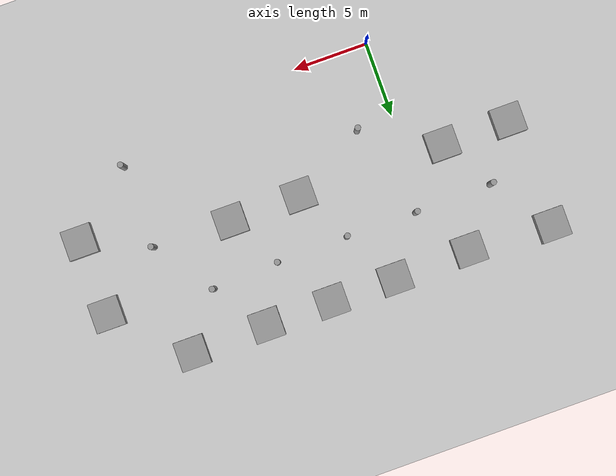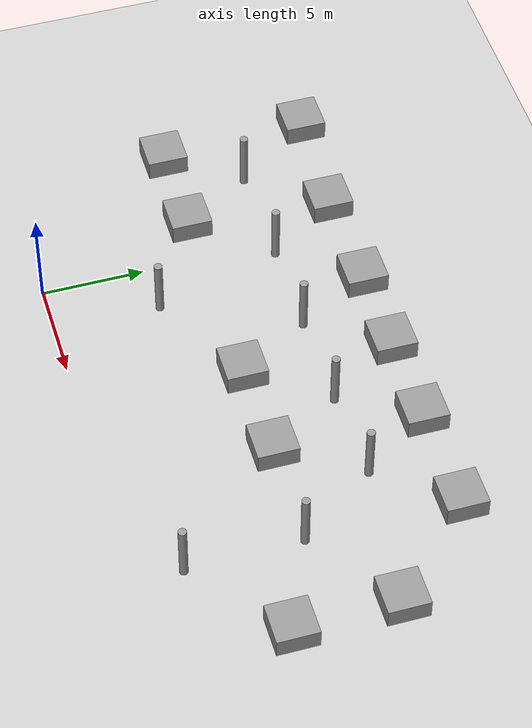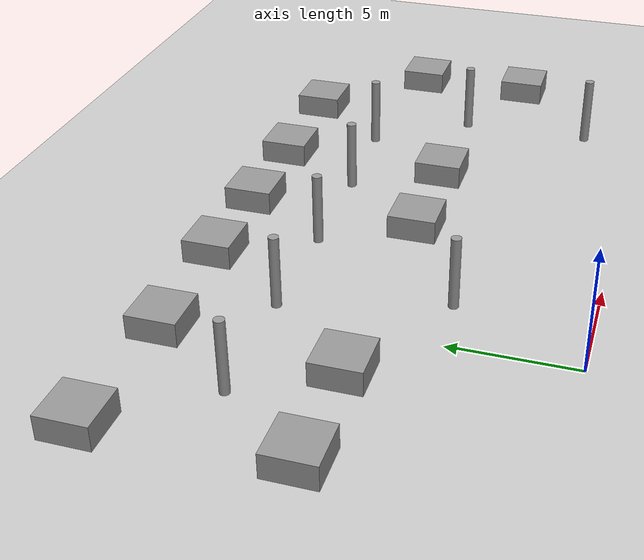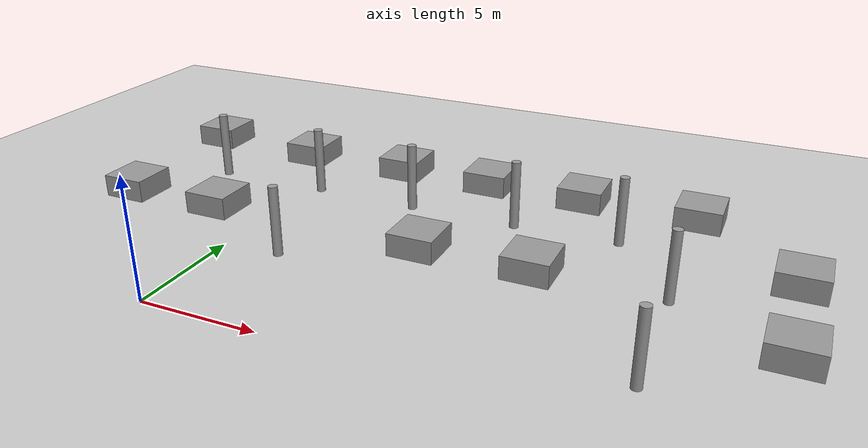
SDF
<sdf version="1.6">
 <world name="default">
  <model name="ground_plane">
   <static>1</static>
   <link name="link">
    <collision name="collision">
     <geometry><plane><normal>0 0 1</normal><size>100 100</size></plane></geometry>
     <surface><friction><ode><mu>100</mu><mu2>50</mu2></ode></friction></surface>
    </collision>
    <visual name="visual">
     <cast_shadows>0</cast_shadows>
     <geometry><plane><normal>0 0 1</normal><size>100 100</size></plane></geometry>
     <material>
      <script><uri>file://media/materials/scripts/gazebo.material</uri><name>Gazebo/Grey</name></script>
     </material>
    </visual>
   </link>
  </model>
  <model name="box3_clone_5">
   <link name="link_0">
    <inertial>
     <mass>200</mass>
     <inertia><ixx>83.3333</ixx><ixy>0</ixy><ixz>0</ixz><iyy>83.3333</iyy><iyz>0</iyz><izz>133.333</izz></inertia>
     <pose>0 0 1 0 -0 0</pose>
    </inertial>
    <visual name="visual">
     <geometry><box><size>2 2 1</size></box></geometry>
     <material>
      <lighting>1</lighting>
      <script><uri>file://media/materials/scripts/gazebo.material</uri><name>Gazebo/Grey</name></script>
      <shader type="pixel"><normal_map>__default__</normal_map></shader>
      <ambient>0.3 0.3 0.3 1</ambient>
      <diffuse>0.7 0.7 0.7 1</diffuse>
      <specular>0.01 0.01 0.01 1</specular>
      <emissive>0 0 0 1</emissive>
     </material>
    </visual>
    <collision name="collision">
     <geometry><box><size>2 2 1</size></box></geometry>
     <surface>
      <friction>
       <ode><mu>1</mu><mu2>1</mu2><fdir1>0 0 0</fdir1><slip1>0</slip1><slip2>0</slip2></ode>
       <torsional>
        <coefficient>1</coefficient>
        <patch_radius>0</patch_radius>
        <surface_radius>0</surface_radius>
        <use_patch_radius>1</use_patch_radius>
        <ode><slip>0</slip></ode>
       </torsional>
      </friction>
      <bounce><restitution_coefficient>0</restitution_coefficient><threshold>1e+06</threshold></bounce>
      <contact>
       <collide_without_contact>0</collide_without_contact>
       <collide_without_contact_bitmask>1</collide_without_contact_bitmask>
       <collide_bitmask>1</collide_bitmask>
       <ode>
        <soft_cfm>0</soft_cfm>
        <soft_erp>0.2</soft_erp>
        <kp>1e+13</kp>
        <kd>1</kd>
        <max_vel>0.01</max_vel>
        <min_depth>0</min_depth>
       </ode>
       <bullet>
        <split_impulse>1</split_impulse>
        <split_impulse_penetration_threshold>-0.01</split_impulse_penetration_threshold>
        <soft_cfm>0</soft_cfm>
        <soft_erp>0.2</soft_erp>
        <kp>1e+13</kp>
        <kd>1</kd>
       </bullet>
      </contact>
     </surface>
    </collision>
   </link>
   <static>0</static>
   <pose>-7.41157 15.2979 0.5 0 -0 0.000104</pose>
  </model>
  <model name="box3_clone_6">
   <link name="link_0">
    <inertial>
     <mass>200</mass>
     <inertia><ixx>83.3333</ixx><ixy>0</ixy><ixz>0</ixz><iyy>83.3333</iyy><iyz>0</iyz><izz>133.333</izz></inertia>
     <pose>0 0 1 0 -0 0</pose>
    </inertial>
    <visual name="visual">
     <geometry><box><size>2 2 1</size></box></geometry>
     <material>
      <lighting>1</lighting>
      <script><uri>file://media/materials/scripts/gazebo.material</uri><name>Gazebo/Grey</name></script>
      <shader type="pixel"><normal_map>__default__</normal_map></shader>
      <ambient>0.3 0.3 0.3 1</ambient>
      <diffuse>0.7 0.7 0.7 1</diffuse>
      <specular>0.01 0.01 0.01 1</specular>
      <emissive>0 0 0 1</emissive>
     </material>
    </visual>
    <collision name="collision">
     <geometry><box><size>2 2 1</size></box></geometry>
     <surface>
      <friction>
       <ode><mu>1</mu><mu2>1</mu2><fdir1>0 0 0</fdir1><slip1>0</slip1><slip2>0</slip2></ode>
       <torsional>
        <coefficient>1</coefficient>
        <patch_radius>0</patch_radius>
        <surface_radius>0</surface_radius>
        <use_patch_radius>1</use_patch_radius>
        <ode><slip>0</slip></ode>
       </torsional>
      </friction>
      <bounce><restitution_coefficient>0</restitution_coefficient><threshold>1e+06</threshold></bounce>
      <contact>
       <collide_without_contact>0</collide_without_contact>
       <collide_without_contact_bitmask>1</collide_without_contact_bitmask>
       <collide_bitmask>1</collide_bitmask>
       <ode>
        <soft_cfm>0</soft_cfm>
        <soft_erp>0.2</soft_erp>
        <kp>1e+13</kp>
        <kd>1</kd>
        <max_vel>0.01</max_vel>
        <min_depth>0</min_depth>
       </ode>
       <bullet>
        <split_impulse>1</split_impulse>
        <split_impulse_penetration_threshold>-0.01</split_impulse_penetration_threshold>
        <soft_cfm>0</soft_cfm>
        <soft_erp>0.2</soft_erp>
        <kp>1e+13</kp>
        <kd>1</kd>
       </bullet>
      </contact>
     </surface>
    </collision>
   </link>
   <static>0</static>
   <pose>-7.01543 7.91101 0.5 0 -0 0.000104</pose>
  </model>
  <model name="box3_clone_7">
   <link name="link_0">
    <inertial>
     <mass>200</mass>
     <inertia><ixx>83.3333</ixx><ixy>0</ixy><ixz>0</ixz><iyy>83.3333</iyy><iyz>0</iyz><izz>133.333</izz></inertia>
     <pose>0 0 1 0 -0 0</pose>
    </inertial>
    <visual name="visual">
     <geometry><box><size>2 2 1</size></box></geometry>
     <material>
      <lighting>1</lighting>
      <script><uri>file://media/materials/scripts/gazebo.material</uri><name>Gazebo/Grey</name></script>
      <shader type="pixel"><normal_map>__default__</normal_map></shader>
      <ambient>0.3 0.3 0.3 1</ambient>
      <diffuse>0.7 0.7 0.7 1</diffuse>
      <specular>0.01 0.01 0.01 1</specular>
      <emissive>0 0 0 1</emissive>
     </material>
    </visual>
    <collision name="collision">
     <geometry><box><size>2 2 1</size></box></geometry>
     <surface>
      <friction>
       <ode><mu>1</mu><mu2>1</mu2><fdir1>0 0 0</fdir1><slip1>0</slip1><slip2>0</slip2></ode>
       <torsional>
        <coefficient>1</coefficient>
        <patch_radius>0</patch_radius>
        <surface_radius>0</surface_radius>
        <use_patch_radius>1</use_patch_radius>
        <ode><slip>0</slip></ode>
       </torsional>
      </friction>
      <bounce><restitution_coefficient>0</restitution_coefficient><threshold>1e+06</threshold></bounce>
      <contact>
       <collide_without_contact>0</collide_without_contact>
       <collide_without_contact_bitmask>1</collide_without_contact_bitmask>
       <collide_bitmask>1</collide_bitmask>
       <ode>
        <soft_cfm>0</soft_cfm>
        <soft_erp>0.2</soft_erp>
        <kp>1e+13</kp>
        <kd>1</kd>
        <max_vel>0.01</max_vel>
        <min_depth>0</min_depth>
       </ode>
       <bullet>
        <split_impulse>1</split_impulse>
        <split_impulse_penetration_threshold>-0.01</split_impulse_penetration_threshold>
        <soft_cfm>0</soft_cfm>
        <soft_erp>0.2</soft_erp>
        <kp>1e+13</kp>
        <kd>1</kd>
       </bullet>
      </contact>
     </surface>
    </collision>
   </link>
   <static>0</static>
   <pose>-2.44061 7.92404 0.5 0 -0 0.000104</pose>
  </model>
  <model name="box3_clone_8">
   <link name="link_0">
    <inertial>
     <mass>200</mass>
     <inertia><ixx>83.3333</ixx><ixy>0</ixy><ixz>0</ixz><iyy>83.3333</iyy><iyz>0</iyz><izz>133.333</izz></inertia>
     <pose>0 0 1 0 -0 0</pose>
    </inertial>
    <visual name="visual">
     <geometry><box><size>2 2 1</size></box></geometry>
     <material>
      <lighting>1</lighting>
      <script><uri>file://media/materials/scripts/gazebo.material</uri><name>Gazebo/Grey</name></script>
      <shader type="pixel"><normal_map>__default__</normal_map></shader>
      <ambient>0.3 0.3 0.3 1</ambient>
      <diffuse>0.7 0.7 0.7 1</diffuse>
      <specular>0.01 0.01 0.01 1</specular>
      <emissive>0 0 0 1</emissive>
     </material>
    </visual>
    <collision name="collision">
     <geometry><box><size>2 2 1</size></box></geometry>
     <surface>
      <friction>
       <ode><mu>1</mu><mu2>1</mu2><fdir1>0 0 0</fdir1><slip1>0</slip1><slip2>0</slip2></ode>
       <torsional>
        <coefficient>1</coefficient>
        <patch_radius>0</patch_radius>
        <surface_radius>0</surface_radius>
        <use_patch_radius>1</use_patch_radius>
        <ode><slip>0</slip></ode>
       </torsional>
      </friction>
      <bounce><restitution_coefficient>0</restitution_coefficient><threshold>1e+06</threshold></bounce>
      <contact>
       <collide_without_contact>0</collide_without_contact>
       <collide_without_contact_bitmask>1</collide_without_contact_bitmask>
       <collide_bitmask>1</collide_bitmask>
       <ode>
        <soft_cfm>0</soft_cfm>
        <soft_erp>0.2</soft_erp>
        <kp>1e+13</kp>
        <kd>1</kd>
        <max_vel>0.01</max_vel>
        <min_depth>0</min_depth>
       </ode>
       <bullet>
        <split_impulse>1</split_impulse>
        <split_impulse_penetration_threshold>-0.01</split_impulse_penetration_threshold>
        <soft_cfm>0</soft_cfm>
        <soft_erp>0.2</soft_erp>
        <kp>1e+13</kp>
        <kd>1</kd>
       </bullet>
      </contact>
     </surface>
    </collision>
   </link>
   <static>0</static>
   <pose>7.50618 7.90798 0.5 0 0 -0.000118</pose>
  </model>
  <model name="box3_clone_9">
   <link name="link_0">
    <inertial>
     <mass>200</mass>
     <inertia><ixx>83.3333</ixx><ixy>0</ixy><ixz>0</ixz><iyy>83.3333</iyy><iyz>0</iyz><izz>133.333</izz></inertia>
     <pose>0 0 1 0 -0 0</pose>
    </inertial>
    <visual name="visual">
     <geometry><box><size>2 2 1</size></box></geometry>
     <material>
      <lighting>1</lighting>
      <script><uri>file://media/materials/scripts/gazebo.material</uri><name>Gazebo/Grey</name></script>
      <shader type="pixel"><normal_map>__default__</normal_map></shader>
      <ambient>0.3 0.3 0.3 1</ambient>
      <diffuse>0.7 0.7 0.7 1</diffuse>
      <specular>0.01 0.01 0.01 1</specular>
      <emissive>0 0 0 1</emissive>
     </material>
    </visual>
    <collision name="collision">
     <geometry><box><size>2 2 1</size></box></geometry>
     <surface>
      <friction>
       <ode><mu>1</mu><mu2>1</mu2><fdir1>0 0 0</fdir1><slip1>0</slip1><slip2>0</slip2></ode>
       <torsional>
        <coefficient>1</coefficient>
        <patch_radius>0</patch_radius>
        <surface_radius>0</surface_radius>
        <use_patch_radius>1</use_patch_radius>
        <ode><slip>0</slip></ode>
       </torsional>
      </friction>
      <bounce><restitution_coefficient>0</restitution_coefficient><threshold>1e+06</threshold></bounce>
      <contact>
       <collide_without_contact>0</collide_without_contact>
       <collide_without_contact_bitmask>1</collide_without_contact_bitmask>
       <collide_bitmask>1</collide_bitmask>
       <ode>
        <soft_cfm>0</soft_cfm>
        <soft_erp>0.2</soft_erp>
        <kp>1e+13</kp>
        <kd>1</kd>
        <max_vel>0.01</max_vel>
        <min_depth>0</min_depth>
       </ode>
       <bullet>
        <split_impulse>1</split_impulse>
        <split_impulse_penetration_threshold>-0.01</split_impulse_penetration_threshold>
        <soft_cfm>0</soft_cfm>
        <soft_erp>0.2</soft_erp>
        <kp>1e+13</kp>
        <kd>1</kd>
       </bullet>
      </contact>
     </surface>
    </collision>
   </link>
   <static>0</static>
   <pose>12.2831 7.97717 0.5 0 -0 0.000104</pose>
  </model>
  <model name="box3_clone_10">
   <link name="link_0">
    <inertial>
     <mass>200</mass>
     <inertia><ixx>83.3333</ixx><ixy>0</ixy><ixz>0</ixz><iyy>83.3333</iyy><iyz>0</iyz><izz>133.333</izz></inertia>
     <pose>0 0 1 0 -0 0</pose>
    </inertial>
    <visual name="visual">
     <geometry><box><size>2 2 1</size></box></geometry>
     <material>
      <lighting>1</lighting>
      <script><uri>file://media/materials/scripts/gazebo.material</uri><name>Gazebo/Grey</name></script>
      <shader type="pixel"><normal_map>__default__</normal_map></shader>
      <ambient>0.3 0.3 0.3 1</ambient>
      <diffuse>0.7 0.7 0.7 1</diffuse>
      <specular>0.01 0.01 0.01 1</specular>
      <emissive>0 0 0 1</emissive>
     </material>
    </visual>
    <collision name="collision">
     <geometry><box><size>2 2 1</size></box></geometry>
     <surface>
      <friction>
       <ode><mu>1</mu><mu2>1</mu2><fdir1>0 0 0</fdir1><slip1>0</slip1><slip2>0</slip2></ode>
       <torsional>
        <coefficient>1</coefficient>
        <patch_radius>0</patch_radius>
        <surface_radius>0</surface_radius>
        <use_patch_radius>1</use_patch_radius>
        <ode><slip>0</slip></ode>
       </torsional>
      </friction>
      <bounce><restitution_coefficient>0</restitution_coefficient><threshold>1e+06</threshold></bounce>
      <contact>
       <collide_without_contact>0</collide_without_contact>
       <collide_without_contact_bitmask>1</collide_without_contact_bitmask>
       <collide_bitmask>1</collide_bitmask>
       <ode>
        <soft_cfm>0</soft_cfm>
        <soft_erp>0.2</soft_erp>
        <kp>1e+13</kp>
        <kd>1</kd>
        <max_vel>0.01</max_vel>
        <min_depth>0</min_depth>
       </ode>
       <bullet>
        <split_impulse>1</split_impulse>
        <split_impulse_penetration_threshold>-0.01</split_impulse_penetration_threshold>
        <soft_cfm>0</soft_cfm>
        <soft_erp>0.2</soft_erp>
        <kp>1e+13</kp>
        <kd>1</kd>
       </bullet>
      </contact>
     </surface>
    </collision>
   </link>
   <static>0</static>
   <pose>7.82772 15.1347 0.5 0 -0 0.000104</pose>
  </model>
  <model name="box3_clone_11">
   <link name="link_0">
    <inertial>
     <mass>200</mass>
     <inertia><ixx>83.3333</ixx><ixy>0</ixy><ixz>0</ixz><iyy>83.3333</iyy><iyz>0</iyz><izz>133.333</izz></inertia>
     <pose>0 0 1 0 -0 0</pose>
    </inertial>
    <visual name="visual">
     <geometry><box><size>2 2 1</size></box></geometry>
     <material>
      <lighting>1</lighting>
      <script><uri>file://media/materials/scripts/gazebo.material</uri><name>Gazebo/Grey</name></script>
      <shader type="pixel"><normal_map>__default__</normal_map></shader>
      <ambient>0.3 0.3 0.3 1</ambient>
      <diffuse>0.7 0.7 0.7 1</diffuse>
      <specular>0.01 0.01 0.01 1</specular>
      <emissive>0 0 0 1</emissive>
     </material>
    </visual>
    <collision name="collision">
     <geometry><box><size>2 2 1</size></box></geometry>
     <surface>
      <friction>
       <ode><mu>1</mu><mu2>1</mu2><fdir1>0 0 0</fdir1><slip1>0</slip1><slip2>0</slip2></ode>
       <torsional>
        <coefficient>1</coefficient>
        <patch_radius>0</patch_radius>
        <surface_radius>0</surface_radius>
        <use_patch_radius>1</use_patch_radius>
        <ode><slip>0</slip></ode>
       </torsional>
      </friction>
      <bounce><restitution_coefficient>0</restitution_coefficient><threshold>1e+06</threshold></bounce>
      <contact>
       <collide_without_contact>0</collide_without_contact>
       <collide_without_contact_bitmask>1</collide_without_contact_bitmask>
       <collide_bitmask>1</collide_bitmask>
       <ode>
        <soft_cfm>0</soft_cfm>
        <soft_erp>0.2</soft_erp>
        <kp>1e+13</kp>
        <kd>1</kd>
        <max_vel>0.01</max_vel>
        <min_depth>0</min_depth>
       </ode>
       <bullet>
        <split_impulse>1</split_impulse>
        <split_impulse_penetration_threshold>-0.01</split_impulse_penetration_threshold>
        <soft_cfm>0</soft_cfm>
        <soft_erp>0.2</soft_erp>
        <kp>1e+13</kp>
        <kd>1</kd>
       </bullet>
      </contact>
     </surface>
    </collision>
   </link>
   <static>0</static>
   <pose>12.333 15.1605 0.499997 0 3e-06 -0.00317</pose>
  </model>
  <model name="box3_clone_12">
   <link name="link_0">
    <inertial>
     <mass>200</mass>
     <inertia><ixx>83.3333</ixx><ixy>0</ixy><ixz>0</ixz><iyy>83.3333</iyy><iyz>0</iyz><izz>133.333</izz></inertia>
     <pose>0 0 1 0 -0 0</pose>
    </inertial>
    <visual name="visual">
     <geometry><box><size>2 2 1</size></box></geometry>
     <material>
      <lighting>1</lighting>
      <script><uri>file://media/materials/scripts/gazebo.material</uri><name>Gazebo/Grey</name></script>
      <shader type="pixel"><normal_map>__default__</normal_map></shader>
      <ambient>0.3 0.3 0.3 1</ambient>
      <diffuse>0.7 0.7 0.7 1</diffuse>
      <specular>0.01 0.01 0.01 1</specular>
      <emissive>0 0 0 1</emissive>
     </material>
    </visual>
    <collision name="collision">
     <geometry><box><size>2 2 1</size></box></geometry>
     <surface>
      <friction>
       <ode><mu>1</mu><mu2>1</mu2><fdir1>0 0 0</fdir1><slip1>0</slip1><slip2>0</slip2></ode>
       <torsional>
        <coefficient>1</coefficient>
        <patch_radius>0</patch_radius>
        <surface_radius>0</surface_radius>
        <use_patch_radius>1</use_patch_radius>
        <ode><slip>0</slip></ode>
       </torsional>
      </friction>
      <bounce><restitution_coefficient>0</restitution_coefficient><threshold>1e+06</threshold></bounce>
      <contact>
       <collide_without_contact>0</collide_without_contact>
       <collide_without_contact_bitmask>1</collide_without_contact_bitmask>
       <collide_bitmask>1</collide_bitmask>
       <ode>
        <soft_cfm>0</soft_cfm>
        <soft_erp>0.2</soft_erp>
        <kp>1e+13</kp>
        <kd>1</kd>
        <max_vel>0.01</max_vel>
        <min_depth>0</min_depth>
       </ode>
       <bullet>
        <split_impulse>1</split_impulse>
        <split_impulse_penetration_threshold>-0.01</split_impulse_penetration_threshold>
        <soft_cfm>0</soft_cfm>
        <soft_erp>0.2</soft_erp>
        <kp>1e+13</kp>
        <kd>1</kd>
       </bullet>
      </contact>
     </surface>
    </collision>
   </link>
   <static>0</static>
   <pose>17.4891 15.2367 0.5 0 -0 -7.4e-05</pose>
  </model>
  <model name="box3_clone_12_clone">
   <link name="link_0">
    <inertial>
     <mass>200</mass>
     <inertia><ixx>83.3333</ixx><ixy>0</ixy><ixz>0</ixz><iyy>83.3333</iyy><iyz>0</iyz><izz>133.333</izz></inertia>
     <pose>0 0 1 0 -0 0</pose>
    </inertial>
    <visual name="visual">
     <geometry><box><size>2 2 1</size></box></geometry>
     <material>
      <lighting>1</lighting>
      <script><uri>file://media/materials/scripts/gazebo.material</uri><name>Gazebo/Grey</name></script>
      <shader type="pixel"><normal_map>__default__</normal_map></shader>
      <ambient>0.3 0.3 0.3 1</ambient>
      <diffuse>0.7 0.7 0.7 1</diffuse>
      <specular>0.01 0.01 0.01 1</specular>
      <emissive>0 0 0 1</emissive>
     </material>
    </visual>
    <collision name="collision">
     <geometry><box><size>2 2 1</size></box></geometry>
     <surface>
      <friction>
       <ode><mu>1</mu><mu2>1</mu2><fdir1>0 0 0</fdir1><slip1>0</slip1><slip2>0</slip2></ode>
       <torsional>
        <coefficient>1</coefficient>
        <patch_radius>0</patch_radius>
        <surface_radius>0</surface_radius>
        <use_patch_radius>1</use_patch_radius>
        <ode><slip>0</slip></ode>
       </torsional>
      </friction>
      <bounce><restitution_coefficient>0</restitution_coefficient><threshold>1e+06</threshold></bounce>
      <contact>
       <collide_without_contact>0</collide_without_contact>
       <collide_without_contact_bitmask>1</collide_without_contact_bitmask>
       <collide_bitmask>1</collide_bitmask>
       <ode>
        <soft_cfm>0</soft_cfm>
        <soft_erp>0.2</soft_erp>
        <kp>1e+13</kp>
        <kd>1</kd>
        <max_vel>0.01</max_vel>
        <min_depth>0</min_depth>
       </ode>
       <bullet>
        <split_impulse>1</split_impulse>
        <split_impulse_penetration_threshold>-0.01</split_impulse_penetration_threshold>
        <soft_cfm>0</soft_cfm>
        <soft_erp>0.2</soft_erp>
        <kp>1e+13</kp>
        <kd>1</kd>
       </bullet>
      </contact>
     </surface>
    </collision>
   </link>
   <static>0</static>
   <pose>21.8797 10.999 0.5 0 -0 0.000104</pose>
  </model>
  <model name="box3_clone_12_clone_0">
   <link name="link_0">
    <inertial>
     <mass>200</mass>
     <inertia><ixx>83.3333</ixx><ixy>0</ixy><ixz>0</ixz><iyy>83.3333</iyy><iyz>0</iyz><izz>133.333</izz></inertia>
     <pose>0 0 1 0 -0 0</pose>
    </inertial>
    <visual name="visual">
     <geometry><box><size>2 2 1</size></box></geometry>
     <material>
      <lighting>1</lighting>
      <script><uri>file://media/materials/scripts/gazebo.material</uri><name>Gazebo/Grey</name></script>
      <shader type="pixel"><normal_map>__default__</normal_map></shader>
      <ambient>0.3 0.3 0.3 1</ambient>
      <diffuse>0.7 0.7 0.7 1</diffuse>
      <specular>0.01 0.01 0.01 1</specular>
      <emissive>0 0 0 1</emissive>
     </material>
    </visual>
    <collision name="collision">
     <geometry><box><size>2 2 1</size></box></geometry>
     <surface>
      <friction>
       <ode><mu>1</mu><mu2>1</mu2><fdir1>0 0 0</fdir1><slip1>0</slip1><slip2>0</slip2></ode>
       <torsional>
        <coefficient>1</coefficient>
        <patch_radius>0</patch_radius>
        <surface_radius>0</surface_radius>
        <use_patch_radius>1</use_patch_radius>
        <ode><slip>0</slip></ode>
       </torsional>
      </friction>
      <bounce><restitution_coefficient>0</restitution_coefficient><threshold>1e+06</threshold></bounce>
      <contact>
       <collide_without_contact>0</collide_without_contact>
       <collide_without_contact_bitmask>1</collide_without_contact_bitmask>
       <collide_bitmask>1</collide_bitmask>
       <ode>
        <soft_cfm>0</soft_cfm>
        <soft_erp>0.2</soft_erp>
        <kp>1e+13</kp>
        <kd>1</kd>
        <max_vel>0.01</max_vel>
        <min_depth>0</min_depth>
       </ode>
       <bullet>
        <split_impulse>1</split_impulse>
        <split_impulse_penetration_threshold>-0.01</split_impulse_penetration_threshold>
        <soft_cfm>0</soft_cfm>
        <soft_erp>0.2</soft_erp>
        <kp>1e+13</kp>
        <kd>1</kd>
       </bullet>
      </contact>
     </surface>
    </collision>
   </link>
   <static>0</static>
   <pose>21.9778 5.95768 0.5 0 -0 0.000104</pose>
  </model>
  <model name="box3_clone_12_clone_2_clone_0_clone">
   <link name="link_0">
    <inertial>
     <mass>200</mass>
     <inertia><ixx>83.3333</ixx><ixy>0</ixy><ixz>0</ixz><iyy>83.3333</iyy><iyz>0</iyz><izz>133.333</izz></inertia>
     <pose>0 0 1 0 -0 0</pose>
    </inertial>
    <visual name="visual">
     <geometry><box><size>2 2 1</size></box></geometry>
     <material>
      <lighting>1</lighting>
      <script><uri>file://media/materials/scripts/gazebo.material</uri><name>Gazebo/Grey</name></script>
      <shader type="pixel"><normal_map>__default__</normal_map></shader>
      <ambient>0.3 0.3 0.3 1</ambient>
      <diffuse>0.7 0.7 0.7 1</diffuse>
      <specular>0.01 0.01 0.01 1</specular>
      <emissive>0 0 0 1</emissive>
     </material>
    </visual>
    <collision name="collision">
     <geometry><box><size>2 2 1</size></box></geometry>
     <surface>
      <friction>
       <ode><mu>1</mu><mu2>1</mu2><fdir1>0 0 0</fdir1><slip1>0</slip1><slip2>0</slip2></ode>
       <torsional>
        <coefficient>1</coefficient>
        <patch_radius>0</patch_radius>
        <surface_radius>0</surface_radius>
        <use_patch_radius>1</use_patch_radius>
        <ode><slip>0</slip></ode>
       </torsional>
      </friction>
      <bounce><restitution_coefficient>0</restitution_coefficient><threshold>1e+06</threshold></bounce>
      <contact>
       <collide_without_contact>0</collide_without_contact>
       <collide_without_contact_bitmask>1</collide_without_contact_bitmask>
       <collide_bitmask>1</collide_bitmask>
       <ode>
        <soft_cfm>0</soft_cfm>
        <soft_erp>0.2</soft_erp>
        <kp>1e+13</kp>
        <kd>1</kd>
        <max_vel>0.01</max_vel>
        <min_depth>0</min_depth>
       </ode>
       <bullet>
        <split_impulse>1</split_impulse>
        <split_impulse_penetration_threshold>-0.01</split_impulse_penetration_threshold>
        <soft_cfm>0</soft_cfm>
        <soft_erp>0.2</soft_erp>
        <kp>1e+13</kp>
        <kd>1</kd>
       </bullet>
      </contact>
     </surface>
    </collision>
   </link>
   <static>0</static>
   <pose>-1.75228 14.9975 0.5 0 0 -8e-05</pose>
  </model>
  <model name="box3_clone_12_clone_2_clone_0_clone_0">
   <link name="link_0">
    <inertial>
     <mass>200</mass>
     <inertia><ixx>83.3333</ixx><ixy>0</ixy><ixz>0</ixz><iyy>83.3333</iyy><iyz>0</iyz><izz>133.333</izz></inertia>
     <pose>0 0 1 0 -0 0</pose>
    </inertial>
    <visual name="visual">
     <geometry><box><size>2 2 1</size></box></geometry>
     <material>
      <lighting>1</lighting>
      <script><uri>file://media/materials/scripts/gazebo.material</uri><name>Gazebo/Grey</name></script>
      <shader type="pixel"><normal_map>__default__</normal_map></shader>
      <ambient>0.3 0.3 0.3 1</ambient>
      <diffuse>0.7 0.7 0.7 1</diffuse>
      <specular>0.01 0.01 0.01 1</specular>
      <emissive>0 0 0 1</emissive>
     </material>
    </visual>
    <collision name="collision">
     <geometry><box><size>2 2 1</size></box></geometry>
     <surface>
      <friction>
       <ode><mu>1</mu><mu2>1</mu2><fdir1>0 0 0</fdir1><slip1>0</slip1><slip2>0</slip2></ode>
       <torsional>
        <coefficient>1</coefficient>
        <patch_radius>0</patch_radius>
        <surface_radius>0</surface_radius>
        <use_patch_radius>1</use_patch_radius>
        <ode><slip>0</slip></ode>
       </torsional>
      </friction>
      <bounce><restitution_coefficient>0</restitution_coefficient><threshold>1e+06</threshold></bounce>
      <contact>
       <collide_without_contact>0</collide_without_contact>
       <collide_without_contact_bitmask>1</collide_without_contact_bitmask>
       <collide_bitmask>1</collide_bitmask>
       <ode>
        <soft_cfm>0</soft_cfm>
        <soft_erp>0.2</soft_erp>
        <kp>1e+13</kp>
        <kd>1</kd>
        <max_vel>0.01</max_vel>
        <min_depth>0</min_depth>
       </ode>
       <bullet>
        <split_impulse>1</split_impulse>
        <split_impulse_penetration_threshold>-0.01</split_impulse_penetration_threshold>
        <soft_cfm>0</soft_cfm>
        <soft_erp>0.2</soft_erp>
        <kp>1e+13</kp>
        <kd>1</kd>
       </bullet>
      </contact>
     </surface>
    </collision>
   </link>
   <static>0</static>
   <pose>3.42397 15.1329 0.499997 0 3e-06 -0.002265</pose>
  </model>
  <model name="pole_clone_5">
   <link name="link_0">
    <inertial>
     <mass>1</mass>
     <inertia><ixx>0.145833</ixx><ixy>0</ixy><ixz>0</ixz><iyy>0.145833</iyy><iyz>0</iyz><izz>0.125</izz></inertia>
    </inertial>
    <visual name="visual">
     <pose>0 0 1 0 -0 0</pose>
     <geometry><cylinder><radius>0.2</radius><length>3</length></cylinder></geometry>
     <material>
      <lighting>1</lighting>
      <script><uri>file://media/materials/scripts/gazebo.material</uri><name>Gazebo/Grey</name></script>
      <shader type="pixel"><normal_map>__default__</normal_map></shader>
      <ambient>0.3 0.3 0.3 1</ambient>
      <diffuse>0.7 0.7 0.7 1</diffuse>
      <specular>0.01 0.01 0.01 1</specular>
      <emissive>0 0 0 1</emissive>
     </material>
    </visual>
    <collision name="collision">
     <pose>0 0 1 0 -0 0</pose>
     <geometry><cylinder><radius>0.2</radius><length>3</length></cylinder></geometry>
     <surface>
      <friction>
       <ode><mu>1</mu><mu2>1</mu2><fdir1>0 0 0</fdir1><slip1>0</slip1><slip2>0</slip2></ode>
       <torsional>
        <coefficient>1</coefficient>
        <patch_radius>0</patch_radius>
        <surface_radius>0</surface_radius>
        <use_patch_radius>1</use_patch_radius>
        <ode><slip>0</slip></ode>
       </torsional>
      </friction>
      <bounce><restitution_coefficient>0</restitution_coefficient><threshold>1e+06</threshold></bounce>
      <contact>
       <collide_without_contact>0</collide_without_contact>
       <collide_without_contact_bitmask>1</collide_without_contact_bitmask>
       <collide_bitmask>1</collide_bitmask>
       <ode>
        <soft_cfm>0</soft_cfm>
        <soft_erp>0.2</soft_erp>
        <kp>1e+13</kp>
        <kd>1</kd>
        <max_vel>0.01</max_vel>
        <min_depth>0</min_depth>
       </ode>
       <bullet>
        <split_impulse>1</split_impulse>
        <split_impulse_penetration_threshold>-0.01</split_impulse_penetration_threshold>
        <soft_cfm>0</soft_cfm>
        <soft_erp>0.2</soft_erp>
        <kp>1e+13</kp>
        <kd>1</kd>
       </bullet>
      </contact>
     </surface>
    </collision>
   </link>
   <static>0</static>
   <pose>-4.5222 11.4399 0.5 0 -0 2e-06</pose>
  </model>
  <model name="pole_clone_6">
   <link name="link_0">
    <inertial>
     <mass>1</mass>
     <inertia><ixx>0.145833</ixx><ixy>0</ixy><ixz>0</ixz><iyy>0.145833</iyy><iyz>0</iyz><izz>0.125</izz></inertia>
    </inertial>
    <visual name="visual">
     <pose>0 0 1 0 -0 0</pose>
     <geometry><cylinder><radius>0.2</radius><length>3</length></cylinder></geometry>
     <material>
      <lighting>1</lighting>
      <script><uri>file://media/materials/scripts/gazebo.material</uri><name>Gazebo/Grey</name></script>
      <shader type="pixel"><normal_map>__default__</normal_map></shader>
      <ambient>0.3 0.3 0.3 1</ambient>
      <diffuse>0.7 0.7 0.7 1</diffuse>
      <specular>0.01 0.01 0.01 1</specular>
      <emissive>0 0 0 1</emissive>
     </material>
    </visual>
    <collision name="collision">
     <pose>0 0 1 0 -0 0</pose>
     <geometry><cylinder><radius>0.2</radius><length>3</length></cylinder></geometry>
     <surface>
      <friction>
       <ode><mu>1</mu><mu2>1</mu2><fdir1>0 0 0</fdir1><slip1>0</slip1><slip2>0</slip2></ode>
       <torsional>
        <coefficient>1</coefficient>
        <patch_radius>0</patch_radius>
        <surface_radius>0</surface_radius>
        <use_patch_radius>1</use_patch_radius>
        <ode><slip>0</slip></ode>
       </torsional>
      </friction>
      <bounce><restitution_coefficient>0</restitution_coefficient><threshold>1e+06</threshold></bounce>
      <contact>
       <collide_without_contact>0</collide_without_contact>
       <collide_without_contact_bitmask>1</collide_without_contact_bitmask>
       <collide_bitmask>1</collide_bitmask>
       <ode>
        <soft_cfm>0</soft_cfm>
        <soft_erp>0.2</soft_erp>
        <kp>1e+13</kp>
        <kd>1</kd>
        <max_vel>0.01</max_vel>
        <min_depth>0</min_depth>
       </ode>
       <bullet>
        <split_impulse>1</split_impulse>
        <split_impulse_penetration_threshold>-0.01</split_impulse_penetration_threshold>
        <soft_cfm>0</soft_cfm>
        <soft_erp>0.2</soft_erp>
        <kp>1e+13</kp>
        <kd>1</kd>
       </bullet>
      </contact>
     </surface>
    </collision>
   </link>
   <static>0</static>
   <pose>0.695327 11.5424 0.5 0 -0 2e-06</pose>
  </model>
  <model name="pole_clone_7">
   <link name="link_0">
    <inertial>
     <mass>1</mass>
     <inertia><ixx>0.145833</ixx><ixy>0</ixy><ixz>0</ixz><iyy>0.145833</iyy><iyz>0</iyz><izz>0.125</izz></inertia>
    </inertial>
    <visual name="visual">
     <pose>0 0 1 0 -0 0</pose>
     <geometry><cylinder><radius>0.2</radius><length>3</length></cylinder></geometry>
     <material>
      <lighting>1</lighting>
      <script><uri>file://media/materials/scripts/gazebo.material</uri><name>Gazebo/Grey</name></script>
      <shader type="pixel"><normal_map>__default__</normal_map></shader>
      <ambient>0.3 0.3 0.3 1</ambient>
      <diffuse>0.7 0.7 0.7 1</diffuse>
      <specular>0.01 0.01 0.01 1</specular>
      <emissive>0 0 0 1</emissive>
     </material>
    </visual>
    <collision name="collision">
     <pose>0 0 1 0 -0 0</pose>
     <geometry><cylinder><radius>0.2</radius><length>3</length></cylinder></geometry>
     <surface>
      <friction>
       <ode><mu>1</mu><mu2>1</mu2><fdir1>0 0 0</fdir1><slip1>0</slip1><slip2>0</slip2></ode>
       <torsional>
        <coefficient>1</coefficient>
        <patch_radius>0</patch_radius>
        <surface_radius>0</surface_radius>
        <use_patch_radius>1</use_patch_radius>
        <ode><slip>0</slip></ode>
       </torsional>
      </friction>
      <bounce><restitution_coefficient>0</restitution_coefficient><threshold>1e+06</threshold></bounce>
      <contact>
       <collide_without_contact>0</collide_without_contact>
       <collide_without_contact_bitmask>1</collide_without_contact_bitmask>
       <collide_bitmask>1</collide_bitmask>
       <ode>
        <soft_cfm>0</soft_cfm>
        <soft_erp>0.2</soft_erp>
        <kp>1e+13</kp>
        <kd>1</kd>
        <max_vel>0.01</max_vel>
        <min_depth>0</min_depth>
       </ode>
       <bullet>
        <split_impulse>1</split_impulse>
        <split_impulse_penetration_threshold>-0.01</split_impulse_penetration_threshold>
        <soft_cfm>0</soft_cfm>
        <soft_erp>0.2</soft_erp>
        <kp>1e+13</kp>
        <kd>1</kd>
       </bullet>
      </contact>
     </surface>
    </collision>
   </link>
   <static>0</static>
   <pose>5.46339 11.5071 0.5 0 -0 2e-06</pose>
  </model>
  <model name="pole_clone_8">
   <link name="link_0">
    <inertial>
     <mass>1</mass>
     <inertia><ixx>0.145833</ixx><ixy>0</ixy><ixz>0</ixz><iyy>0.145833</iyy><iyz>0</iyz><izz>0.125</izz></inertia>
    </inertial>
    <visual name="visual">
     <pose>0 0 1 0 -0 0</pose>
     <geometry><cylinder><radius>0.2</radius><length>3</length></cylinder></geometry>
     <material>
      <lighting>1</lighting>
      <script><uri>file://media/materials/scripts/gazebo.material</uri><name>Gazebo/Grey</name></script>
      <shader type="pixel"><normal_map>__default__</normal_map></shader>
      <ambient>0.3 0.3 0.3 1</ambient>
      <diffuse>0.7 0.7 0.7 1</diffuse>
      <specular>0.01 0.01 0.01 1</specular>
      <emissive>0 0 0 1</emissive>
     </material>
    </visual>
    <collision name="collision">
     <pose>0 0 1 0 -0 0</pose>
     <geometry><cylinder><radius>0.2</radius><length>3</length></cylinder></geometry>
     <surface>
      <friction>
       <ode><mu>1</mu><mu2>1</mu2><fdir1>0 0 0</fdir1><slip1>0</slip1><slip2>0</slip2></ode>
       <torsional>
        <coefficient>1</coefficient>
        <patch_radius>0</patch_radius>
        <surface_radius>0</surface_radius>
        <use_patch_radius>1</use_patch_radius>
        <ode><slip>0</slip></ode>
       </torsional>
      </friction>
      <bounce><restitution_coefficient>0</restitution_coefficient><threshold>1e+06</threshold></bounce>
      <contact>
       <collide_without_contact>0</collide_without_contact>
       <collide_without_contact_bitmask>1</collide_without_contact_bitmask>
       <collide_bitmask>1</collide_bitmask>
       <ode>
        <soft_cfm>0</soft_cfm>
        <soft_erp>0.2</soft_erp>
        <kp>1e+13</kp>
        <kd>1</kd>
        <max_vel>0.01</max_vel>
        <min_depth>0</min_depth>
       </ode>
       <bullet>
        <split_impulse>1</split_impulse>
        <split_impulse_penetration_threshold>-0.01</split_impulse_penetration_threshold>
        <soft_cfm>0</soft_cfm>
        <soft_erp>0.2</soft_erp>
        <kp>1e+13</kp>
        <kd>1</kd>
       </bullet>
      </contact>
     </surface>
    </collision>
   </link>
   <static>0</static>
   <pose>10.2742 11.5665 0.5 0 -0 2e-06</pose>
  </model>
  <model name="pole_clone_9">
   <link name="link_0">
    <inertial>
     <mass>1</mass>
     <inertia><ixx>0.145833</ixx><ixy>0</ixy><ixz>0</ixz><iyy>0.145833</iyy><iyz>0</iyz><izz>0.125</izz></inertia>
    </inertial>
    <visual name="visual">
     <pose>0 0 1 0 -0 0</pose>
     <geometry><cylinder><radius>0.2</radius><length>3</length></cylinder></geometry>
     <material>
      <lighting>1</lighting>
      <script><uri>file://media/materials/scripts/gazebo.material</uri><name>Gazebo/Grey</name></script>
      <shader type="pixel"><normal_map>__default__</normal_map></shader>
      <ambient>0.3 0.3 0.3 1</ambient>
      <diffuse>0.7 0.7 0.7 1</diffuse>
      <specular>0.01 0.01 0.01 1</specular>
      <emissive>0 0 0 1</emissive>
     </material>
    </visual>
    <collision name="collision">
     <pose>0 0 1 0 -0 0</pose>
     <geometry><cylinder><radius>0.2</radius><length>3</length></cylinder></geometry>
     <surface>
      <friction>
       <ode><mu>1</mu><mu2>1</mu2><fdir1>0 0 0</fdir1><slip1>0</slip1><slip2>0</slip2></ode>
       <torsional>
        <coefficient>1</coefficient>
        <patch_radius>0</patch_radius>
        <surface_radius>0</surface_radius>
        <use_patch_radius>1</use_patch_radius>
        <ode><slip>0</slip></ode>
       </torsional>
      </friction>
      <bounce><restitution_coefficient>0</restitution_coefficient><threshold>1e+06</threshold></bounce>
      <contact>
       <collide_without_contact>0</collide_without_contact>
       <collide_without_contact_bitmask>1</collide_without_contact_bitmask>
       <collide_bitmask>1</collide_bitmask>
       <ode>
        <soft_cfm>0</soft_cfm>
        <soft_erp>0.2</soft_erp>
        <kp>1e+13</kp>
        <kd>1</kd>
        <max_vel>0.01</max_vel>
        <min_depth>0</min_depth>
       </ode>
       <bullet>
        <split_impulse>1</split_impulse>
        <split_impulse_penetration_threshold>-0.01</split_impulse_penetration_threshold>
        <soft_cfm>0</soft_cfm>
        <soft_erp>0.2</soft_erp>
        <kp>1e+13</kp>
        <kd>1</kd>
       </bullet>
      </contact>
     </surface>
    </collision>
   </link>
   <static>0</static>
   <pose>14.779 11.787 0.5 0 -0 2e-06</pose>
  </model>
  <model name="pole_clone_17">
   <link name="link_0">
    <inertial>
     <mass>1</mass>
     <inertia><ixx>0.145833</ixx><ixy>0</ixy><ixz>0</ixz><iyy>0.145833</iyy><iyz>0</iyz><izz>0.125</izz></inertia>
    </inertial>
    <visual name="visual">
     <pose>0 0 1 0 -0 0</pose>
     <geometry><cylinder><radius>0.2</radius><length>3</length></cylinder></geometry>
     <material>
      <lighting>1</lighting>
      <script><uri>file://media/materials/scripts/gazebo.material</uri><name>Gazebo/Grey</name></script>
      <shader type="pixel"><normal_map>__default__</normal_map></shader>
      <ambient>0.3 0.3 0.3 1</ambient>
      <diffuse>0.7 0.7 0.7 1</diffuse>
      <specular>0.01 0.01 0.01 1</specular>
      <emissive>0 0 0 1</emissive>
     </material>
    </visual>
    <collision name="collision">
     <pose>0 0 1 0 -0 0</pose>
     <geometry><cylinder><radius>0.2</radius><length>3</length></cylinder></geometry>
     <surface>
      <friction>
       <ode><mu>1</mu><mu2>1</mu2><fdir1>0 0 0</fdir1><slip1>0</slip1><slip2>0</slip2></ode>
       <torsional>
        <coefficient>1</coefficient>
        <patch_radius>0</patch_radius>
        <surface_radius>0</surface_radius>
        <use_patch_radius>1</use_patch_radius>
        <ode><slip>0</slip></ode>
       </torsional>
      </friction>
      <bounce><restitution_coefficient>0</restitution_coefficient><threshold>1e+06</threshold></bounce>
      <contact>
       <collide_without_contact>0</collide_without_contact>
       <collide_without_contact_bitmask>1</collide_without_contact_bitmask>
       <collide_bitmask>1</collide_bitmask>
       <ode>
        <soft_cfm>0</soft_cfm>
        <soft_erp>0.2</soft_erp>
        <kp>1e+13</kp>
        <kd>1</kd>
        <max_vel>0.01</max_vel>
        <min_depth>0</min_depth>
       </ode>
       <bullet>
        <split_impulse>1</split_impulse>
        <split_impulse_penetration_threshold>-0.01</split_impulse_penetration_threshold>
        <soft_cfm>0</soft_cfm>
        <soft_erp>0.2</soft_erp>
        <kp>1e+13</kp>
        <kd>1</kd>
       </bullet>
      </contact>
     </surface>
    </collision>
   </link>
   <static>0</static>
   <pose>17.6421 2.2992 0.5 0 -0 2e-06</pose>
  </model>
  <model name="pole_clone_18">
   <link name="link_0">
    <inertial>
     <mass>1</mass>
     <inertia><ixx>0.145833</ixx><ixy>0</ixy><ixz>0</ixz><iyy>0.145833</iyy><iyz>0</iyz><izz>0.125</izz></inertia>
    </inertial>
    <visual name="visual">
     <pose>0 0 1 0 -0 0</pose>
     <geometry><cylinder><radius>0.2</radius><length>3</length></cylinder></geometry>
     <material>
      <lighting>1</lighting>
      <script><uri>file://media/materials/scripts/gazebo.material</uri><name>Gazebo/Grey</name></script>
      <shader type="pixel"><normal_map>__default__</normal_map></shader>
      <ambient>0.3 0.3 0.3 1</ambient>
      <diffuse>0.7 0.7 0.7 1</diffuse>
      <specular>0.01 0.01 0.01 1</specular>
      <emissive>0 0 0 1</emissive>
     </material>
    </visual>
    <collision name="collision">
     <pose>0 0 1 0 -0 0</pose>
     <geometry><cylinder><radius>0.2</radius><length>3</length></cylinder></geometry>
     <surface>
      <friction>
       <ode><mu>1</mu><mu2>1</mu2><fdir1>0 0 0</fdir1><slip1>0</slip1><slip2>0</slip2></ode>
       <torsional>
        <coefficient>1</coefficient>
        <patch_radius>0</patch_radius>
        <surface_radius>0</surface_radius>
        <use_patch_radius>1</use_patch_radius>
        <ode><slip>0</slip></ode>
       </torsional>
      </friction>
      <bounce><restitution_coefficient>0</restitution_coefficient><threshold>1e+06</threshold></bounce>
      <contact>
       <collide_without_contact>0</collide_without_contact>
       <collide_without_contact_bitmask>1</collide_without_contact_bitmask>
       <collide_bitmask>1</collide_bitmask>
       <ode>
        <soft_cfm>0</soft_cfm>
        <soft_erp>0.2</soft_erp>
        <kp>1e+13</kp>
        <kd>1</kd>
        <max_vel>0.01</max_vel>
        <min_depth>0</min_depth>
       </ode>
       <bullet>
        <split_impulse>1</split_impulse>
        <split_impulse_penetration_threshold>-0.01</split_impulse_penetration_threshold>
        <soft_cfm>0</soft_cfm>
        <soft_erp>0.2</soft_erp>
        <kp>1e+13</kp>
        <kd>1</kd>
       </bullet>
      </contact>
     </surface>
    </collision>
   </link>
   <static>0</static>
   <pose>17.5598 7.9016 0.5 0 -0 2e-06</pose>
  </model>
  <model name="pole_clone_21">
   <link name="link_0">
    <inertial>
     <mass>1</mass>
     <inertia><ixx>0.145833</ixx><ixy>0</ixy><ixz>0</ixz><iyy>0.145833</iyy><iyz>0</iyz><izz>0.125</izz></inertia>
    </inertial>
    <visual name="visual">
     <pose>0 0 1 0 -0 0</pose>
     <geometry><cylinder><radius>0.2</radius><length>3</length></cylinder></geometry>
     <material>
      <lighting>1</lighting>
      <script><uri>file://media/materials/scripts/gazebo.material</uri><name>Gazebo/Grey</name></script>
      <shader type="pixel"><normal_map>__default__</normal_map></shader>
      <ambient>0.3 0.3 0.3 1</ambient>
      <diffuse>0.7 0.7 0.7 1</diffuse>
      <specular>0.01 0.01 0.01 1</specular>
      <emissive>0 0 0 1</emissive>
     </material>
    </visual>
    <collision name="collision">
     <pose>0 0 1 0 -0 0</pose>
     <geometry><cylinder><radius>0.2</radius><length>3</length></cylinder></geometry>
     <surface>
      <friction>
       <ode><mu>1</mu><mu2>1</mu2><fdir1>0 0 0</fdir1><slip1>0</slip1><slip2>0</slip2></ode>
       <torsional>
        <coefficient>1</coefficient>
        <patch_radius>0</patch_radius>
        <surface_radius>0</surface_radius>
        <use_patch_radius>1</use_patch_radius>
        <ode><slip>0</slip></ode>
       </torsional>
      </friction>
      <bounce><restitution_coefficient>0</restitution_coefficient><threshold>1e+06</threshold></bounce>
      <contact>
       <collide_without_contact>0</collide_without_contact>
       <collide_without_contact_bitmask>1</collide_without_contact_bitmask>
       <collide_bitmask>1</collide_bitmask>
       <ode>
        <soft_cfm>0</soft_cfm>
        <soft_erp>0.2</soft_erp>
        <kp>1e+13</kp>
        <kd>1</kd>
        <max_vel>0.01</max_vel>
        <min_depth>0</min_depth>
       </ode>
       <bullet>
        <split_impulse>1</split_impulse>
        <split_impulse_penetration_threshold>-0.01</split_impulse_penetration_threshold>
        <soft_cfm>0</soft_cfm>
        <soft_erp>0.2</soft_erp>
        <kp>1e+13</kp>
        <kd>1</kd>
       </bullet>
      </contact>
     </surface>
    </collision>
   </link>
   <static>0</static>
   <pose>2.49384 5.20644 0.5 0 -0 2e-06</pose>
  </model>
 </world>
</sdf>
